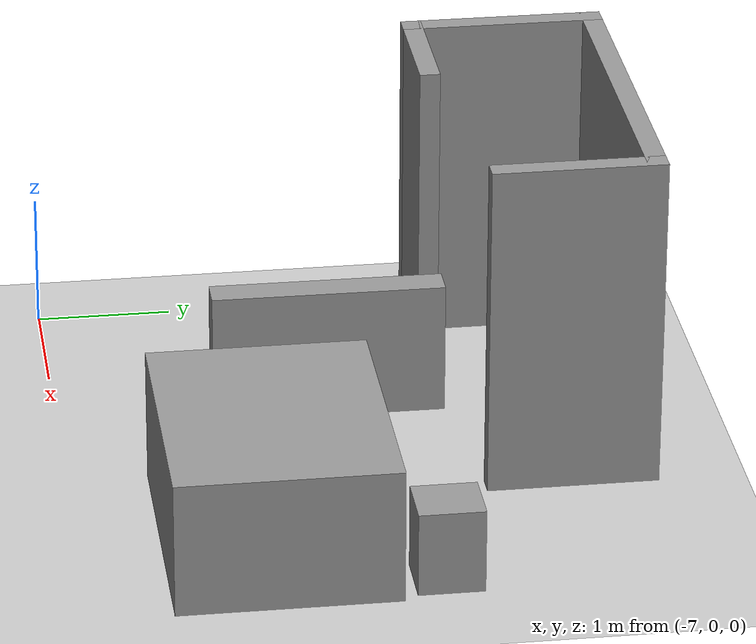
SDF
<sdf version="1.9">
 <world name="default">
  <model name="ground_plane">
   <static>true</static>
   <link name="link">
    <collision name="collision">
     <geometry><plane><normal>0 0 1</normal><size>100 100</size></plane></geometry>
     <surface><friction><ode><mu>100</mu><mu2>50</mu2></ode></friction></surface>
    </collision>
    <visual name="visual">
     <cast_shadows>false</cast_shadows>
     <geometry><plane><normal>0 0 1</normal><size>100 100</size></plane></geometry>
     <material>
      <script><uri>file://media/materials/scripts/gazebo.material</uri><name>Gazebo/Grey</name></script>
     </material>
    </visual>
   </link>
  </model>
  <model name="cma_banheiro">
   <pose>-5.2292800000000002 3.4870999999999999 0 0 0 0</pose>
   <link name="Wall_0">
    <collision name="Wall_0_Collision">
     <geometry><box><size>1 0.14999999999999999 2.5</size></box></geometry>
     <pose>0 0 1.25 0 0 0</pose>
    </collision>
    <visual name="Wall_0_Visual">
     <pose>0 0 1.25 0 0 0</pose>
     <geometry><box><size>1 0.14999999999999999 2.5</size></box></geometry>
     <material>
      <script><uri>file://media/materials/scripts/gazebo.material</uri><name>Gazebo/Grey</name></script>
      <ambient>1 1 1 1</ambient>
     </material>
    </visual>
    <pose>-0.875 -0.67500000000000004 0 0 0 3.1415899999999999</pose>
   </link>
   <link name="Wall_1">
    <collision name="Wall_1_Collision">
     <geometry><box><size>1.5 0.14999999999999999 2.5</size></box></geometry>
     <pose>0 0 1.25 0 0 0</pose>
    </collision>
    <visual name="Wall_1_Visual">
     <pose>0 0 1.25 0 0 0</pose>
     <geometry><box><size>1.5 0.14999999999999999 2.5</size></box></geometry>
     <material>
      <script><uri>file://media/materials/scripts/gazebo.material</uri><name>Gazebo/Grey</name></script>
      <ambient>1 1 1 1</ambient>
     </material>
    </visual>
    <pose>-1.3 0 0 0 0 1.5708</pose>
   </link>
   <link name="Wall_2">
    <collision name="Wall_2_Collision">
     <geometry><box><size>2.75 0.14999999999999999 2.5</size></box></geometry>
     <pose>0 0 1.25 0 0 0</pose>
    </collision>
    <visual name="Wall_2_Visual">
     <pose>0 0 1.25 0 0 0</pose>
     <geometry><box><size>2.75 0.14999999999999999 2.5</size></box></geometry>
     <material>
      <script><uri>file://media/materials/scripts/gazebo.material</uri><name>Gazebo/Grey</name></script>
      <ambient>1 1 1 1</ambient>
     </material>
    </visual>
    <pose>0 0.67500000000000004 0 0 0 0</pose>
   </link>
   <link name="Wall_4">
    <collision name="Wall_4_Collision">
     <geometry><box><size>1.25 0.14999999999999999 2.5</size></box></geometry>
     <pose>0 0 1.25 0 0 0</pose>
    </collision>
    <visual name="Wall_4_Visual">
     <pose>0 0 1.25 0 0 0</pose>
     <geometry><box><size>1.25 0.14999999999999999 2.5</size></box></geometry>
     <material>
      <script><uri>file://media/materials/scripts/gazebo.material</uri><name>Gazebo/Grey</name></script>
      <ambient>1 1 1 1</ambient>
     </material>
    </visual>
    <pose>1.3 0.125 0 0 0 -1.5708</pose>
   </link>
   <static>true</static>
  </model>
  <model name="cma_cama_c_0">
   <link name="link_0">
    <pose>5.0000000000000004e-06 -3.9999999999999998e-06 0 0 0 0</pose>
    <inertial>
     <mass>3.1835800000000001</mass>
     <inertia>
      <ixx>0.93486199999999997</ixx>
      <ixy>0</ixy>
      <ixz>0</ixz>
      <iyy>1.3306899999999999</iyy>
      <iyz>0</iyz>
      <izz>1.7349600000000001</izz>
     </inertia>
    </inertial>
    <visual name="visual">
     <geometry><box><size>2.0039400000000001 1.58866 1</size></box></geometry>
     <material>
      <lighting>true</lighting>
      <script><uri>file://media/materials/scripts/gazebo.material</uri><name>Gazebo/Grey</name></script>
      <ambient>0.300000012 0.300000012 0.300000012 1</ambient>
      <diffuse>0.699999988 0.699999988 0.699999988 1</diffuse>
      <specular>0.00999999978 0.00999999978 0.00999999978 1</specular>
      <emissive>0 0 0 1</emissive>
     </material>
    </visual>
    <collision name="collision">
     <geometry><box><size>2.0039400000000001 1.58866 1</size></box></geometry>
     <surface>
      <friction>
       <ode><mu>1</mu><mu2>1</mu2><fdir1>0 0 0</fdir1><slip1>0</slip1><slip2>0</slip2></ode>
       <torsional>
        <coefficient>1</coefficient>
        <patch_radius>0</patch_radius>
        <surface_radius>0</surface_radius>
        <use_patch_radius>true</use_patch_radius>
        <ode><slip>0</slip></ode>
       </torsional>
      </friction>
      <bounce><restitution_coefficient>0</restitution_coefficient><threshold>1000000</threshold></bounce>
      <contact>
       <collide_without_contact>false</collide_without_contact>
       <collide_without_contact_bitmask>1</collide_without_contact_bitmask>
       <collide_bitmask>1</collide_bitmask>
       <ode>
        <soft_cfm>0</soft_cfm>
        <soft_erp>0.20000000000000001</soft_erp>
        <kp>10000000000000</kp>
        <kd>1</kd>
        <max_vel>0.01</max_vel>
        <min_depth>0</min_depth>
       </ode>
       <bullet>
        <split_impulse>true</split_impulse>
        <split_impulse_penetration_threshold>-0.01</split_impulse_penetration_threshold>
        <soft_cfm>0</soft_cfm>
        <soft_erp>0.20000000000000001</soft_erp>
        <kp>10000000000000</kp>
        <kd>1</kd>
       </bullet>
      </contact>
     </surface>
    </collision>
   </link>
   <static>false</static>
   <pose>-3.3823799999999999 1.3878699999999999 0.5 0 0 -2.0000000000000003e-06</pose>
  </model>
  <model name="cma_bau_s_0">
   <link name="link_1">
    <pose>0.109594 0.27229300000000001 0 0 0 0</pose>
    <inertial>
     <mass>0.12547900000000001</mass>
     <inertia>
      <ixx>0.0064194300000000003</ixx>
      <ixy>0</ixy>
      <ixz>0</ixz>
      <iyy>0.0059753999999999996</iyy>
      <iyz>0</iyz>
      <izz>0.0042208499999999999</izz>
     </inertia>
    </inertial>
    <visual name="visual">
     <geometry><box><size>0.42496400000000001 0.47228300000000001 0.62511799999999995</size></box></geometry>
     <material>
      <lighting>true</lighting>
      <script><uri>file://media/materials/scripts/gazebo.material</uri><name>Gazebo/Grey</name></script>
      <ambient>0.300000012 0.300000012 0.300000012 1</ambient>
      <diffuse>0.699999988 0.699999988 0.699999988 1</diffuse>
      <specular>0.00999999978 0.00999999978 0.00999999978 1</specular>
      <emissive>0 0 0 1</emissive>
     </material>
    </visual>
    <collision name="collision">
     <geometry><box><size>0.42496400000000001 0.47228300000000001 0.62511799999999995</size></box></geometry>
     <surface>
      <friction>
       <ode><mu>1</mu><mu2>1</mu2><fdir1>0 0 0</fdir1><slip1>0</slip1><slip2>0</slip2></ode>
       <torsional>
        <coefficient>1</coefficient>
        <patch_radius>0</patch_radius>
        <surface_radius>0</surface_radius>
        <use_patch_radius>true</use_patch_radius>
        <ode><slip>0</slip></ode>
       </torsional>
      </friction>
      <bounce><restitution_coefficient>0</restitution_coefficient><threshold>1000000</threshold></bounce>
      <contact>
       <collide_without_contact>false</collide_without_contact>
       <collide_without_contact_bitmask>1</collide_without_contact_bitmask>
       <collide_bitmask>1</collide_bitmask>
       <ode>
        <soft_cfm>0</soft_cfm>
        <soft_erp>0.20000000000000001</soft_erp>
        <kp>10000000000000</kp>
        <kd>1</kd>
        <max_vel>0.01</max_vel>
        <min_depth>0</min_depth>
       </ode>
       <bullet>
        <split_impulse>true</split_impulse>
        <split_impulse_penetration_threshold>-0.01</split_impulse_penetration_threshold>
        <soft_cfm>0</soft_cfm>
        <soft_erp>0.20000000000000001</soft_erp>
        <kp>10000000000000</kp>
        <kd>1</kd>
       </bullet>
      </contact>
     </surface>
    </collision>
   </link>
   <static>false</static>
   <pose>-2.7651500000000002 2.2427800000000002 0.312554 9.0000000000000002e-06 8.000000000000003e-06 -0.00012700000000000008</pose>
  </model>
  <model name="cma_armario_6">
   <link name="link_0">
    <pose>1.3215699999999999 0.88517800000000002 0.5 0 0 0</pose>
    <inertial>
     <mass>0.40237600000000001</mass>
     <inertia>
      <ixx>0.0353686</ixx>
      <ixy>0</ixy>
      <ixz>0</ixz>
      <iyy>0.13261600000000001</iyy>
      <iyz>0</iyz>
      <izz>0.100922</izz>
     </inertia>
    </inertial>
    <visual name="visual">
     <geometry><box><size>1.7187699999999999 0.234069 1</size></box></geometry>
     <material>
      <lighting>true</lighting>
      <script><uri>file://media/materials/scripts/gazebo.material</uri><name>Gazebo/Grey</name></script>
      <ambient>0.300000012 0.300000012 0.300000012 1</ambient>
      <diffuse>0.699999988 0.699999988 0.699999988 1</diffuse>
      <specular>0.00999999978 0.00999999978 0.00999999978 1</specular>
      <emissive>0 0 0 1</emissive>
     </material>
    </visual>
    <collision name="collision">
     <geometry><box><size>1.7187699999999999 0.234069 1</size></box></geometry>
     <surface>
      <friction>
       <ode><mu>1</mu><mu2>1</mu2><fdir1>0 0 0</fdir1><slip1>0</slip1><slip2>0</slip2></ode>
       <torsional>
        <coefficient>1</coefficient>
        <patch_radius>0</patch_radius>
        <surface_radius>0</surface_radius>
        <use_patch_radius>true</use_patch_radius>
        <ode><slip>0</slip></ode>
       </torsional>
      </friction>
      <bounce><restitution_coefficient>0</restitution_coefficient><threshold>1000000</threshold></bounce>
      <contact>
       <collide_without_contact>false</collide_without_contact>
       <collide_without_contact_bitmask>1</collide_without_contact_bitmask>
       <collide_bitmask>1</collide_bitmask>
       <ode>
        <soft_cfm>0</soft_cfm>
        <soft_erp>0.20000000000000001</soft_erp>
        <kp>10000000000000</kp>
        <kd>1</kd>
        <max_vel>0.01</max_vel>
        <min_depth>0</min_depth>
       </ode>
       <bullet>
        <split_impulse>true</split_impulse>
        <split_impulse_penetration_threshold>-0.01</split_impulse_penetration_threshold>
        <soft_cfm>0</soft_cfm>
        <soft_erp>0.20000000000000001</soft_erp>
        <kp>10000000000000</kp>
        <kd>1</kd>
       </bullet>
      </contact>
     </surface>
    </collision>
   </link>
   <static>false</static>
   <pose>-4.3866199999999997 0.68751700000000004 0 0 0 1.5658799999999999</pose>
  </model>
 </world>
</sdf>
